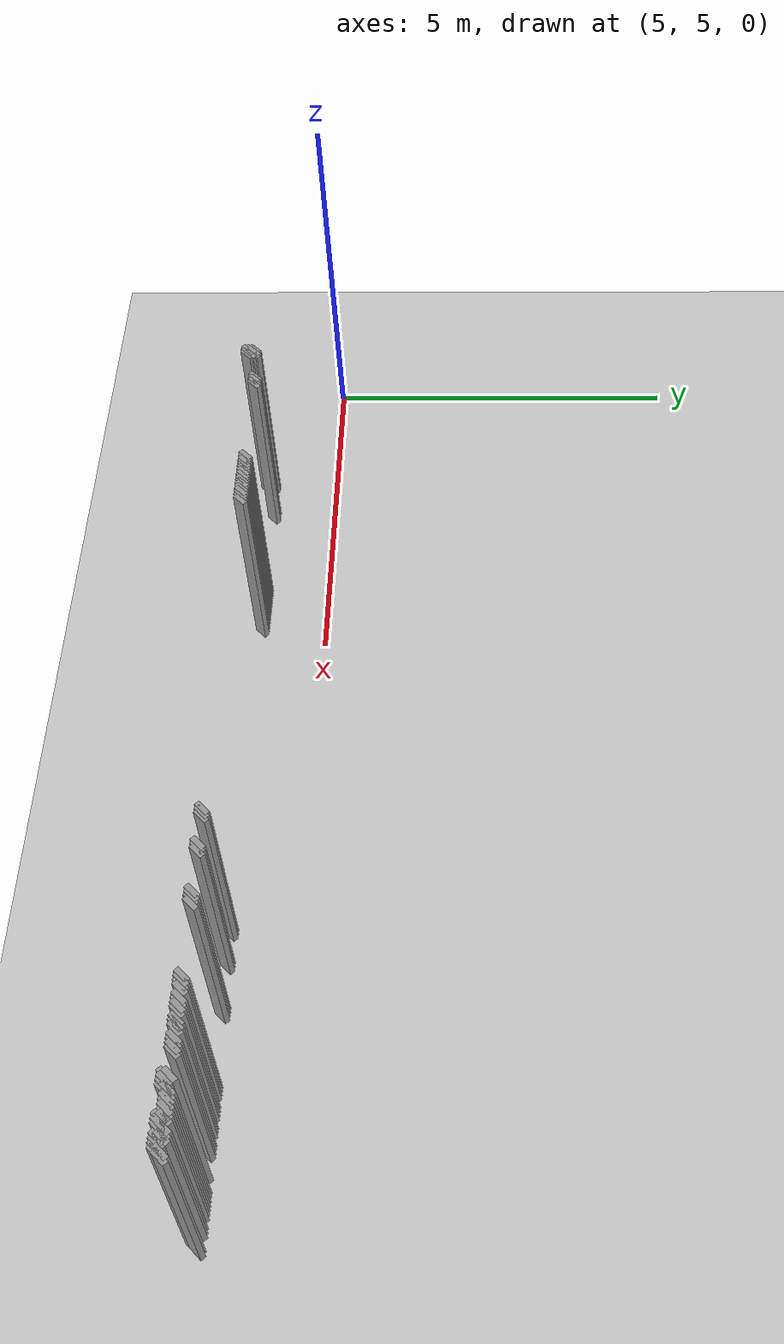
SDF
<sdf version="1.5">
 <world name="default">
  <include><uri>model://ground_plane</uri></include>
  <include><uri>model://sun</uri></include>
  <model name="grey_wall_2489">
   <static>1</static>
   <link name="link">
    <pose>7.45 4.1  1.4 0 0 -0.785398163397</pose>
    <collision name="collision"><geometry><box><size>0.0707106781187 .2  2.8</size></box></geometry></collision>
    <visual name="visual">
     <cast_shadows>0</cast_shadows>
     <geometry><box><size>0.0707106781187 .2  2.8</size></box></geometry>
     <material>
      <script>
       <uri>model://grey_wall/materials/scripts</uri>
       <uri>model://grey_wall/materials/textures</uri>
       <name>vrc/grey_wall</name>
      </script>
     </material>
    </visual>
   </link>
  </model>
  <model name="grey_wall_2490">
   <static>1</static>
   <link name="link">
    <pose>7.5 4.1  1.4 0 0 -0.785398163397</pose>
    <collision name="collision"><geometry><box><size>0.0707106781187 .2  2.8</size></box></geometry></collision>
    <visual name="visual">
     <cast_shadows>0</cast_shadows>
     <geometry><box><size>0.0707106781187 .2  2.8</size></box></geometry>
     <material>
      <script>
       <uri>model://grey_wall/materials/scripts</uri>
       <uri>model://grey_wall/materials/textures</uri>
       <name>vrc/grey_wall</name>
      </script>
     </material>
    </visual>
   </link>
  </model>
  <model name="grey_wall_2491">
   <static>1</static>
   <link name="link">
    <pose>7.55 4.1  1.4 0 0 -0.785398163397</pose>
    <collision name="collision"><geometry><box><size>0.0707106781187 .2  2.8</size></box></geometry></collision>
    <visual name="visual">
     <cast_shadows>0</cast_shadows>
     <geometry><box><size>0.0707106781187 .2  2.8</size></box></geometry>
     <material>
      <script>
       <uri>model://grey_wall/materials/scripts</uri>
       <uri>model://grey_wall/materials/textures</uri>
       <name>vrc/grey_wall</name>
      </script>
     </material>
    </visual>
   </link>
  </model>
  <model name="grey_wall_2492">
   <static>1</static>
   <link name="link">
    <pose>7.6 4.1  1.4 0 0 -0.785398163397</pose>
    <collision name="collision"><geometry><box><size>0.0707106781187 .2  2.8</size></box></geometry></collision>
    <visual name="visual">
     <cast_shadows>0</cast_shadows>
     <geometry><box><size>0.0707106781187 .2  2.8</size></box></geometry>
     <material>
      <script>
       <uri>model://grey_wall/materials/scripts</uri>
       <uri>model://grey_wall/materials/textures</uri>
       <name>vrc/grey_wall</name>
      </script>
     </material>
    </visual>
   </link>
  </model>
  <model name="grey_wall_2493">
   <static>1</static>
   <link name="link">
    <pose>8.95 4.1  1.4 0 0 -0.785398163397</pose>
    <collision name="collision"><geometry><box><size>0.0707106781187 .2  2.8</size></box></geometry></collision>
    <visual name="visual">
     <cast_shadows>0</cast_shadows>
     <geometry><box><size>0.0707106781187 .2  2.8</size></box></geometry>
     <material>
      <script>
       <uri>model://grey_wall/materials/scripts</uri>
       <uri>model://grey_wall/materials/textures</uri>
       <name>vrc/grey_wall</name>
      </script>
     </material>
    </visual>
   </link>
  </model>
  <model name="grey_wall_2494">
   <static>1</static>
   <link name="link">
    <pose>9.0 4.1  1.4 0 0 -0.785398163397</pose>
    <collision name="collision"><geometry><box><size>0.0707106781187 .2  2.8</size></box></geometry></collision>
    <visual name="visual">
     <cast_shadows>0</cast_shadows>
     <geometry><box><size>0.0707106781187 .2  2.8</size></box></geometry>
     <material>
      <script>
       <uri>model://grey_wall/materials/scripts</uri>
       <uri>model://grey_wall/materials/textures</uri>
       <name>vrc/grey_wall</name>
      </script>
     </material>
    </visual>
   </link>
  </model>
  <model name="grey_wall_2495">
   <static>1</static>
   <link name="link">
    <pose>9.05 4.1  1.4 0 0 -0.785398163397</pose>
    <collision name="collision"><geometry><box><size>0.0707106781187 .2  2.8</size></box></geometry></collision>
    <visual name="visual">
     <cast_shadows>0</cast_shadows>
     <geometry><box><size>0.0707106781187 .2  2.8</size></box></geometry>
     <material>
      <script>
       <uri>model://grey_wall/materials/scripts</uri>
       <uri>model://grey_wall/materials/textures</uri>
       <name>vrc/grey_wall</name>
      </script>
     </material>
    </visual>
   </link>
  </model>
  <model name="grey_wall_2496">
   <static>1</static>
   <link name="link">
    <pose>9.1 4.1  1.4 0 0 -0.785398163397</pose>
    <collision name="collision"><geometry><box><size>0.0707106781187 .2  2.8</size></box></geometry></collision>
    <visual name="visual">
     <cast_shadows>0</cast_shadows>
     <geometry><box><size>0.0707106781187 .2  2.8</size></box></geometry>
     <material>
      <script>
       <uri>model://grey_wall/materials/scripts</uri>
       <uri>model://grey_wall/materials/textures</uri>
       <name>vrc/grey_wall</name>
      </script>
     </material>
    </visual>
   </link>
  </model>
  <model name="grey_wall_2497">
   <static>1</static>
   <link name="link">
    <pose>9.15 4.1  1.4 0 0 -0.785398163397</pose>
    <collision name="collision"><geometry><box><size>0.0707106781187 .2  2.8</size></box></geometry></collision>
    <visual name="visual">
     <cast_shadows>0</cast_shadows>
     <geometry><box><size>0.0707106781187 .2  2.8</size></box></geometry>
     <material>
      <script>
       <uri>model://grey_wall/materials/scripts</uri>
       <uri>model://grey_wall/materials/textures</uri>
       <name>vrc/grey_wall</name>
      </script>
     </material>
    </visual>
   </link>
  </model>
  <model name="grey_wall_2498">
   <static>1</static>
   <link name="link">
    <pose>9.2 4.1  1.4 0 0 -0.785398163397</pose>
    <collision name="collision"><geometry><box><size>0.0707106781187 .2  2.8</size></box></geometry></collision>
    <visual name="visual">
     <cast_shadows>0</cast_shadows>
     <geometry><box><size>0.0707106781187 .2  2.8</size></box></geometry>
     <material>
      <script>
       <uri>model://grey_wall/materials/scripts</uri>
       <uri>model://grey_wall/materials/textures</uri>
       <name>vrc/grey_wall</name>
      </script>
     </material>
    </visual>
   </link>
  </model>
  <model name="grey_wall_2499">
   <static>1</static>
   <link name="link">
    <pose>9.25 4.1  1.4 0 0 -0.785398163397</pose>
    <collision name="collision"><geometry><box><size>0.0707106781187 .2  2.8</size></box></geometry></collision>
    <visual name="visual">
     <cast_shadows>0</cast_shadows>
     <geometry><box><size>0.0707106781187 .2  2.8</size></box></geometry>
     <material>
      <script>
       <uri>model://grey_wall/materials/scripts</uri>
       <uri>model://grey_wall/materials/textures</uri>
       <name>vrc/grey_wall</name>
      </script>
     </material>
    </visual>
   </link>
  </model>
  <model name="grey_wall_2500">
   <static>1</static>
   <link name="link">
    <pose>9.3 4.1  1.4 0 0 -0.785398163397</pose>
    <collision name="collision"><geometry><box><size>0.0707106781187 .2  2.8</size></box></geometry></collision>
    <visual name="visual">
     <cast_shadows>0</cast_shadows>
     <geometry><box><size>0.0707106781187 .2  2.8</size></box></geometry>
     <material>
      <script>
       <uri>model://grey_wall/materials/scripts</uri>
       <uri>model://grey_wall/materials/textures</uri>
       <name>vrc/grey_wall</name>
      </script>
     </material>
    </visual>
   </link>
  </model>
  <model name="grey_wall_2501">
   <static>1</static>
   <link name="link">
    <pose>9.35 4.1  1.4 0 0 -0.785398163397</pose>
    <collision name="collision"><geometry><box><size>0.0707106781187 .2  2.8</size></box></geometry></collision>
    <visual name="visual">
     <cast_shadows>0</cast_shadows>
     <geometry><box><size>0.0707106781187 .2  2.8</size></box></geometry>
     <material>
      <script>
       <uri>model://grey_wall/materials/scripts</uri>
       <uri>model://grey_wall/materials/textures</uri>
       <name>vrc/grey_wall</name>
      </script>
     </material>
    </visual>
   </link>
  </model>
  <model name="grey_wall_2502">
   <static>1</static>
   <link name="link">
    <pose>9.4 4.1  1.4 0 0 -0.785398163397</pose>
    <collision name="collision"><geometry><box><size>0.0707106781187 .2  2.8</size></box></geometry></collision>
    <visual name="visual">
     <cast_shadows>0</cast_shadows>
     <geometry><box><size>0.0707106781187 .2  2.8</size></box></geometry>
     <material>
      <script>
       <uri>model://grey_wall/materials/scripts</uri>
       <uri>model://grey_wall/materials/textures</uri>
       <name>vrc/grey_wall</name>
      </script>
     </material>
    </visual>
   </link>
  </model>
  <model name="grey_wall_2503">
   <static>1</static>
   <link name="link">
    <pose>9.45 4.1  1.4 0 0 -0.785398163397</pose>
    <collision name="collision"><geometry><box><size>0.0707106781187 .2  2.8</size></box></geometry></collision>
    <visual name="visual">
     <cast_shadows>0</cast_shadows>
     <geometry><box><size>0.0707106781187 .2  2.8</size></box></geometry>
     <material>
      <script>
       <uri>model://grey_wall/materials/scripts</uri>
       <uri>model://grey_wall/materials/textures</uri>
       <name>vrc/grey_wall</name>
      </script>
     </material>
    </visual>
   </link>
  </model>
  <model name="grey_wall_2504">
   <static>1</static>
   <link name="link">
    <pose>9.5 4.1  1.4 0 0 -0.785398163397</pose>
    <collision name="collision"><geometry><box><size>0.0707106781187 .2  2.8</size></box></geometry></collision>
    <visual name="visual">
     <cast_shadows>0</cast_shadows>
     <geometry><box><size>0.0707106781187 .2  2.8</size></box></geometry>
     <material>
      <script>
       <uri>model://grey_wall/materials/scripts</uri>
       <uri>model://grey_wall/materials/textures</uri>
       <name>vrc/grey_wall</name>
      </script>
     </material>
    </visual>
   </link>
  </model>
  <model name="grey_wall_2505">
   <static>1</static>
   <link name="link">
    <pose>9.55 4.1  1.4 0 0 -0.785398163397</pose>
    <collision name="collision"><geometry><box><size>0.0707106781187 .2  2.8</size></box></geometry></collision>
    <visual name="visual">
     <cast_shadows>0</cast_shadows>
     <geometry><box><size>0.0707106781187 .2  2.8</size></box></geometry>
     <material>
      <script>
       <uri>model://grey_wall/materials/scripts</uri>
       <uri>model://grey_wall/materials/textures</uri>
       <name>vrc/grey_wall</name>
      </script>
     </material>
    </visual>
   </link>
  </model>
  <model name="grey_wall_2506">
   <static>1</static>
   <link name="link">
    <pose>9.6 4.1  1.4 0 0 -0.785398163397</pose>
    <collision name="collision"><geometry><box><size>0.0707106781187 .2  2.8</size></box></geometry></collision>
    <visual name="visual">
     <cast_shadows>0</cast_shadows>
     <geometry><box><size>0.0707106781187 .2  2.8</size></box></geometry>
     <material>
      <script>
       <uri>model://grey_wall/materials/scripts</uri>
       <uri>model://grey_wall/materials/textures</uri>
       <name>vrc/grey_wall</name>
      </script>
     </material>
    </visual>
   </link>
  </model>
  <model name="grey_wall_2507">
   <static>1</static>
   <link name="link">
    <pose>9.65 4.1  1.4 0 0 -0.785398163397</pose>
    <collision name="collision"><geometry><box><size>0.0707106781187 .2  2.8</size></box></geometry></collision>
    <visual name="visual">
     <cast_shadows>0</cast_shadows>
     <geometry><box><size>0.0707106781187 .2  2.8</size></box></geometry>
     <material>
      <script>
       <uri>model://grey_wall/materials/scripts</uri>
       <uri>model://grey_wall/materials/textures</uri>
       <name>vrc/grey_wall</name>
      </script>
     </material>
    </visual>
   </link>
  </model>
  <model name="grey_wall_2508">
   <static>1</static>
   <link name="link">
    <pose>9.7 4.1  1.4 0 0 -0.785398163397</pose>
    <collision name="collision"><geometry><box><size>0.0707106781187 .2  2.8</size></box></geometry></collision>
    <visual name="visual">
     <cast_shadows>0</cast_shadows>
     <geometry><box><size>0.0707106781187 .2  2.8</size></box></geometry>
     <material>
      <script>
       <uri>model://grey_wall/materials/scripts</uri>
       <uri>model://grey_wall/materials/textures</uri>
       <name>vrc/grey_wall</name>
      </script>
     </material>
    </visual>
   </link>
  </model>
  <model name="grey_wall_2509">
   <static>1</static>
   <link name="link">
    <pose>9.75 4.1  1.4 0 0 -0.785398163397</pose>
    <collision name="collision"><geometry><box><size>0.0707106781187 .2  2.8</size></box></geometry></collision>
    <visual name="visual">
     <cast_shadows>0</cast_shadows>
     <geometry><box><size>0.0707106781187 .2  2.8</size></box></geometry>
     <material>
      <script>
       <uri>model://grey_wall/materials/scripts</uri>
       <uri>model://grey_wall/materials/textures</uri>
       <name>vrc/grey_wall</name>
      </script>
     </material>
    </visual>
   </link>
  </model>
  <model name="grey_wall_2510">
   <static>1</static>
   <link name="link">
    <pose>14.45 4.1  1.4 0 0 -0.785398163397</pose>
    <collision name="collision"><geometry><box><size>0.0707106781187 .2  2.8</size></box></geometry></collision>
    <visual name="visual">
     <cast_shadows>0</cast_shadows>
     <geometry><box><size>0.0707106781187 .2  2.8</size></box></geometry>
     <material>
      <script>
       <uri>model://grey_wall/materials/scripts</uri>
       <uri>model://grey_wall/materials/textures</uri>
       <name>vrc/grey_wall</name>
      </script>
     </material>
    </visual>
   </link>
  </model>
  <model name="grey_wall_2511">
   <static>1</static>
   <link name="link">
    <pose>14.5 4.1  1.4 0 0 -0.785398163397</pose>
    <collision name="collision"><geometry><box><size>0.0707106781187 .2  2.8</size></box></geometry></collision>
    <visual name="visual">
     <cast_shadows>0</cast_shadows>
     <geometry><box><size>0.0707106781187 .2  2.8</size></box></geometry>
     <material>
      <script>
       <uri>model://grey_wall/materials/scripts</uri>
       <uri>model://grey_wall/materials/textures</uri>
       <name>vrc/grey_wall</name>
      </script>
     </material>
    </visual>
   </link>
  </model>
  <model name="grey_wall_2512">
   <static>1</static>
   <link name="link">
    <pose>14.55 4.1  1.4 0 0 -0.785398163397</pose>
    <collision name="collision"><geometry><box><size>0.0707106781187 .2  2.8</size></box></geometry></collision>
    <visual name="visual">
     <cast_shadows>0</cast_shadows>
     <geometry><box><size>0.0707106781187 .2  2.8</size></box></geometry>
     <material>
      <script>
       <uri>model://grey_wall/materials/scripts</uri>
       <uri>model://grey_wall/materials/textures</uri>
       <name>vrc/grey_wall</name>
      </script>
     </material>
    </visual>
   </link>
  </model>
  <model name="grey_wall_2513">
   <static>1</static>
   <link name="link">
    <pose>14.9 4.1  1.4 0 0 -0.785398163397</pose>
    <collision name="collision"><geometry><box><size>0.0707106781187 .2  2.8</size></box></geometry></collision>
    <visual name="visual">
     <cast_shadows>0</cast_shadows>
     <geometry><box><size>0.0707106781187 .2  2.8</size></box></geometry>
     <material>
      <script>
       <uri>model://grey_wall/materials/scripts</uri>
       <uri>model://grey_wall/materials/textures</uri>
       <name>vrc/grey_wall</name>
      </script>
     </material>
    </visual>
   </link>
  </model>
  <model name="grey_wall_2514">
   <static>1</static>
   <link name="link">
    <pose>14.95 4.1  1.4 0 0 -0.785398163397</pose>
    <collision name="collision"><geometry><box><size>0.0707106781187 .2  2.8</size></box></geometry></collision>
    <visual name="visual">
     <cast_shadows>0</cast_shadows>
     <geometry><box><size>0.0707106781187 .2  2.8</size></box></geometry>
     <material>
      <script>
       <uri>model://grey_wall/materials/scripts</uri>
       <uri>model://grey_wall/materials/textures</uri>
       <name>vrc/grey_wall</name>
      </script>
     </material>
    </visual>
   </link>
  </model>
  <model name="grey_wall_2515">
   <static>1</static>
   <link name="link">
    <pose>15.0 4.1  1.4 0 0 -0.785398163397</pose>
    <collision name="collision"><geometry><box><size>0.0707106781187 .2  2.8</size></box></geometry></collision>
    <visual name="visual">
     <cast_shadows>0</cast_shadows>
     <geometry><box><size>0.0707106781187 .2  2.8</size></box></geometry>
     <material>
      <script>
       <uri>model://grey_wall/materials/scripts</uri>
       <uri>model://grey_wall/materials/textures</uri>
       <name>vrc/grey_wall</name>
      </script>
     </material>
    </visual>
   </link>
  </model>
  <model name="grey_wall_2516">
   <static>1</static>
   <link name="link">
    <pose>15.5 4.1  1.4 0 0 -0.785398163397</pose>
    <collision name="collision"><geometry><box><size>0.0707106781187 .2  2.8</size></box></geometry></collision>
    <visual name="visual">
     <cast_shadows>0</cast_shadows>
     <geometry><box><size>0.0707106781187 .2  2.8</size></box></geometry>
     <material>
      <script>
       <uri>model://grey_wall/materials/scripts</uri>
       <uri>model://grey_wall/materials/textures</uri>
       <name>vrc/grey_wall</name>
      </script>
     </material>
    </visual>
   </link>
  </model>
  <model name="grey_wall_2517">
   <static>1</static>
   <link name="link">
    <pose>15.55 4.1  1.4 0 0 -0.785398163397</pose>
    <collision name="collision"><geometry><box><size>0.0707106781187 .2  2.8</size></box></geometry></collision>
    <visual name="visual">
     <cast_shadows>0</cast_shadows>
     <geometry><box><size>0.0707106781187 .2  2.8</size></box></geometry>
     <material>
      <script>
       <uri>model://grey_wall/materials/scripts</uri>
       <uri>model://grey_wall/materials/textures</uri>
       <name>vrc/grey_wall</name>
      </script>
     </material>
    </visual>
   </link>
  </model>
  <model name="grey_wall_2518">
   <static>1</static>
   <link name="link">
    <pose>15.6 4.1  1.4 0 0 -0.785398163397</pose>
    <collision name="collision"><geometry><box><size>0.0707106781187 .2  2.8</size></box></geometry></collision>
    <visual name="visual">
     <cast_shadows>0</cast_shadows>
     <geometry><box><size>0.0707106781187 .2  2.8</size></box></geometry>
     <material>
      <script>
       <uri>model://grey_wall/materials/scripts</uri>
       <uri>model://grey_wall/materials/textures</uri>
       <name>vrc/grey_wall</name>
      </script>
     </material>
    </visual>
   </link>
  </model>
  <model name="grey_wall_2519">
   <static>1</static>
   <link name="link">
    <pose>15.65 4.1  1.4 0 0 -0.785398163397</pose>
    <collision name="collision"><geometry><box><size>0.0707106781187 .2  2.8</size></box></geometry></collision>
    <visual name="visual">
     <cast_shadows>0</cast_shadows>
     <geometry><box><size>0.0707106781187 .2  2.8</size></box></geometry>
     <material>
      <script>
       <uri>model://grey_wall/materials/scripts</uri>
       <uri>model://grey_wall/materials/textures</uri>
       <name>vrc/grey_wall</name>
      </script>
     </material>
    </visual>
   </link>
  </model>
  <model name="grey_wall_2520">
   <static>1</static>
   <link name="link">
    <pose>16.5 4.1  1.4 0 0 -0.785398163397</pose>
    <collision name="collision"><geometry><box><size>0.0707106781187 .2  2.8</size></box></geometry></collision>
    <visual name="visual">
     <cast_shadows>0</cast_shadows>
     <geometry><box><size>0.0707106781187 .2  2.8</size></box></geometry>
     <material>
      <script>
       <uri>model://grey_wall/materials/scripts</uri>
       <uri>model://grey_wall/materials/textures</uri>
       <name>vrc/grey_wall</name>
      </script>
     </material>
    </visual>
   </link>
  </model>
  <model name="grey_wall_2521">
   <static>1</static>
   <link name="link">
    <pose>16.55 4.1  1.4 0 0 -0.785398163397</pose>
    <collision name="collision"><geometry><box><size>0.0707106781187 .2  2.8</size></box></geometry></collision>
    <visual name="visual">
     <cast_shadows>0</cast_shadows>
     <geometry><box><size>0.0707106781187 .2  2.8</size></box></geometry>
     <material>
      <script>
       <uri>model://grey_wall/materials/scripts</uri>
       <uri>model://grey_wall/materials/textures</uri>
       <name>vrc/grey_wall</name>
      </script>
     </material>
    </visual>
   </link>
  </model>
  <model name="grey_wall_2522">
   <static>1</static>
   <link name="link">
    <pose>16.6 4.1  1.4 0 0 -0.785398163397</pose>
    <collision name="collision"><geometry><box><size>0.0707106781187 .2  2.8</size></box></geometry></collision>
    <visual name="visual">
     <cast_shadows>0</cast_shadows>
     <geometry><box><size>0.0707106781187 .2  2.8</size></box></geometry>
     <material>
      <script>
       <uri>model://grey_wall/materials/scripts</uri>
       <uri>model://grey_wall/materials/textures</uri>
       <name>vrc/grey_wall</name>
      </script>
     </material>
    </visual>
   </link>
  </model>
  <model name="grey_wall_2523">
   <static>1</static>
   <link name="link">
    <pose>16.65 4.1  1.4 0 0 -0.785398163397</pose>
    <collision name="collision"><geometry><box><size>0.0707106781187 .2  2.8</size></box></geometry></collision>
    <visual name="visual">
     <cast_shadows>0</cast_shadows>
     <geometry><box><size>0.0707106781187 .2  2.8</size></box></geometry>
     <material>
      <script>
       <uri>model://grey_wall/materials/scripts</uri>
       <uri>model://grey_wall/materials/textures</uri>
       <name>vrc/grey_wall</name>
      </script>
     </material>
    </visual>
   </link>
  </model>
  <model name="grey_wall_2524">
   <static>1</static>
   <link name="link">
    <pose>16.75 4.1  1.4 0 0 -0.785398163397</pose>
    <collision name="collision"><geometry><box><size>0.0707106781187 .2  2.8</size></box></geometry></collision>
    <visual name="visual">
     <cast_shadows>0</cast_shadows>
     <geometry><box><size>0.0707106781187 .2  2.8</size></box></geometry>
     <material>
      <script>
       <uri>model://grey_wall/materials/scripts</uri>
       <uri>model://grey_wall/materials/textures</uri>
       <name>vrc/grey_wall</name>
      </script>
     </material>
    </visual>
   </link>
  </model>
  <model name="grey_wall_2525">
   <static>1</static>
   <link name="link">
    <pose>16.8 4.1  1.4 0 0 -0.785398163397</pose>
    <collision name="collision"><geometry><box><size>0.0707106781187 .2  2.8</size></box></geometry></collision>
    <visual name="visual">
     <cast_shadows>0</cast_shadows>
     <geometry><box><size>0.0707106781187 .2  2.8</size></box></geometry>
     <material>
      <script>
       <uri>model://grey_wall/materials/scripts</uri>
       <uri>model://grey_wall/materials/textures</uri>
       <name>vrc/grey_wall</name>
      </script>
     </material>
    </visual>
   </link>
  </model>
  <model name="grey_wall_2526">
   <static>1</static>
   <link name="link">
    <pose>16.85 4.1  1.4 0 0 -0.785398163397</pose>
    <collision name="collision"><geometry><box><size>0.0707106781187 .2  2.8</size></box></geometry></collision>
    <visual name="visual">
     <cast_shadows>0</cast_shadows>
     <geometry><box><size>0.0707106781187 .2  2.8</size></box></geometry>
     <material>
      <script>
       <uri>model://grey_wall/materials/scripts</uri>
       <uri>model://grey_wall/materials/textures</uri>
       <name>vrc/grey_wall</name>
      </script>
     </material>
    </visual>
   </link>
  </model>
  <model name="grey_wall_2527">
   <static>1</static>
   <link name="link">
    <pose>16.9 4.1  1.4 0 0 -0.785398163397</pose>
    <collision name="collision"><geometry><box><size>0.0707106781187 .2  2.8</size></box></geometry></collision>
    <visual name="visual">
     <cast_shadows>0</cast_shadows>
     <geometry><box><size>0.0707106781187 .2  2.8</size></box></geometry>
     <material>
      <script>
       <uri>model://grey_wall/materials/scripts</uri>
       <uri>model://grey_wall/materials/textures</uri>
       <name>vrc/grey_wall</name>
      </script>
     </material>
    </visual>
   </link>
  </model>
  <model name="grey_wall_2528">
   <static>1</static>
   <link name="link">
    <pose>17.0 4.1  1.4 0 0 -0.785398163397</pose>
    <collision name="collision"><geometry><box><size>0.0707106781187 .2  2.8</size></box></geometry></collision>
    <visual name="visual">
     <cast_shadows>0</cast_shadows>
     <geometry><box><size>0.0707106781187 .2  2.8</size></box></geometry>
     <material>
      <script>
       <uri>model://grey_wall/materials/scripts</uri>
       <uri>model://grey_wall/materials/textures</uri>
       <name>vrc/grey_wall</name>
      </script>
     </material>
    </visual>
   </link>
  </model>
  <model name="grey_wall_2529">
   <static>1</static>
   <link name="link">
    <pose>17.05 4.1  1.4 0 0 -0.785398163397</pose>
    <collision name="collision"><geometry><box><size>0.0707106781187 .2  2.8</size></box></geometry></collision>
    <visual name="visual">
     <cast_shadows>0</cast_shadows>
     <geometry><box><size>0.0707106781187 .2  2.8</size></box></geometry>
     <material>
      <script>
       <uri>model://grey_wall/materials/scripts</uri>
       <uri>model://grey_wall/materials/textures</uri>
       <name>vrc/grey_wall</name>
      </script>
     </material>
    </visual>
   </link>
  </model>
  <model name="grey_wall_2530">
   <static>1</static>
   <link name="link">
    <pose>17.1 4.1  1.4 0 0 -0.785398163397</pose>
    <collision name="collision"><geometry><box><size>0.0707106781187 .2  2.8</size></box></geometry></collision>
    <visual name="visual">
     <cast_shadows>0</cast_shadows>
     <geometry><box><size>0.0707106781187 .2  2.8</size></box></geometry>
     <material>
      <script>
       <uri>model://grey_wall/materials/scripts</uri>
       <uri>model://grey_wall/materials/textures</uri>
       <name>vrc/grey_wall</name>
      </script>
     </material>
    </visual>
   </link>
  </model>
  <model name="grey_wall_2531">
   <static>1</static>
   <link name="link">
    <pose>17.2 4.1  1.4 0 0 -0.785398163397</pose>
    <collision name="collision"><geometry><box><size>0.0707106781187 .2  2.8</size></box></geometry></collision>
    <visual name="visual">
     <cast_shadows>0</cast_shadows>
     <geometry><box><size>0.0707106781187 .2  2.8</size></box></geometry>
     <material>
      <script>
       <uri>model://grey_wall/materials/scripts</uri>
       <uri>model://grey_wall/materials/textures</uri>
       <name>vrc/grey_wall</name>
      </script>
     </material>
    </visual>
   </link>
  </model>
  <model name="grey_wall_2532">
   <static>1</static>
   <link name="link">
    <pose>17.25 4.1  1.4 0 0 -0.785398163397</pose>
    <collision name="collision"><geometry><box><size>0.0707106781187 .2  2.8</size></box></geometry></collision>
    <visual name="visual">
     <cast_shadows>0</cast_shadows>
     <geometry><box><size>0.0707106781187 .2  2.8</size></box></geometry>
     <material>
      <script>
       <uri>model://grey_wall/materials/scripts</uri>
       <uri>model://grey_wall/materials/textures</uri>
       <name>vrc/grey_wall</name>
      </script>
     </material>
    </visual>
   </link>
  </model>
  <model name="grey_wall_2533">
   <static>1</static>
   <link name="link">
    <pose>17.3 4.1  1.4 0 0 -0.785398163397</pose>
    <collision name="collision"><geometry><box><size>0.0707106781187 .2  2.8</size></box></geometry></collision>
    <visual name="visual">
     <cast_shadows>0</cast_shadows>
     <geometry><box><size>0.0707106781187 .2  2.8</size></box></geometry>
     <material>
      <script>
       <uri>model://grey_wall/materials/scripts</uri>
       <uri>model://grey_wall/materials/textures</uri>
       <name>vrc/grey_wall</name>
      </script>
     </material>
    </visual>
   </link>
  </model>
  <model name="grey_wall_2534">
   <static>1</static>
   <link name="link">
    <pose>17.35 4.1  1.4 0 0 -0.785398163397</pose>
    <collision name="collision"><geometry><box><size>0.0707106781187 .2  2.8</size></box></geometry></collision>
    <visual name="visual">
     <cast_shadows>0</cast_shadows>
     <geometry><box><size>0.0707106781187 .2  2.8</size></box></geometry>
     <material>
      <script>
       <uri>model://grey_wall/materials/scripts</uri>
       <uri>model://grey_wall/materials/textures</uri>
       <name>vrc/grey_wall</name>
      </script>
     </material>
    </visual>
   </link>
  </model>
  <model name="grey_wall_2535">
   <static>1</static>
   <link name="link">
    <pose>17.6 4.1  1.4 0 0 -0.785398163397</pose>
    <collision name="collision"><geometry><box><size>0.0707106781187 .2  2.8</size></box></geometry></collision>
    <visual name="visual">
     <cast_shadows>0</cast_shadows>
     <geometry><box><size>0.0707106781187 .2  2.8</size></box></geometry>
     <material>
      <script>
       <uri>model://grey_wall/materials/scripts</uri>
       <uri>model://grey_wall/materials/textures</uri>
       <name>vrc/grey_wall</name>
      </script>
     </material>
    </visual>
   </link>
  </model>
  <model name="grey_wall_2536">
   <static>1</static>
   <link name="link">
    <pose>17.75 4.1  1.4 0 0 -0.785398163397</pose>
    <collision name="collision"><geometry><box><size>0.0707106781187 .2  2.8</size></box></geometry></collision>
    <visual name="visual">
     <cast_shadows>0</cast_shadows>
     <geometry><box><size>0.0707106781187 .2  2.8</size></box></geometry>
     <material>
      <script>
       <uri>model://grey_wall/materials/scripts</uri>
       <uri>model://grey_wall/materials/textures</uri>
       <name>vrc/grey_wall</name>
      </script>
     </material>
    </visual>
   </link>
  </model>
  <model name="grey_wall_2537">
   <static>1</static>
   <link name="link">
    <pose>17.8 4.1  1.4 0 0 -0.785398163397</pose>
    <collision name="collision"><geometry><box><size>0.0707106781187 .2  2.8</size></box></geometry></collision>
    <visual name="visual">
     <cast_shadows>0</cast_shadows>
     <geometry><box><size>0.0707106781187 .2  2.8</size></box></geometry>
     <material>
      <script>
       <uri>model://grey_wall/materials/scripts</uri>
       <uri>model://grey_wall/materials/textures</uri>
       <name>vrc/grey_wall</name>
      </script>
     </material>
    </visual>
   </link>
  </model>
  <model name="grey_wall_2538">
   <static>1</static>
   <link name="link">
    <pose>17.85 4.1  1.4 0 0 -0.785398163397</pose>
    <collision name="collision"><geometry><box><size>0.0707106781187 .2  2.8</size></box></geometry></collision>
    <visual name="visual">
     <cast_shadows>0</cast_shadows>
     <geometry><box><size>0.0707106781187 .2  2.8</size></box></geometry>
     <material>
      <script>
       <uri>model://grey_wall/materials/scripts</uri>
       <uri>model://grey_wall/materials/textures</uri>
       <name>vrc/grey_wall</name>
      </script>
     </material>
    </visual>
   </link>
  </model>
  <model name="grey_wall_2539">
   <static>1</static>
   <link name="link">
    <pose>17.9 4.1  1.4 0 0 -0.785398163397</pose>
    <collision name="collision"><geometry><box><size>0.0707106781187 .2  2.8</size></box></geometry></collision>
    <visual name="visual">
     <cast_shadows>0</cast_shadows>
     <geometry><box><size>0.0707106781187 .2  2.8</size></box></geometry>
     <material>
      <script>
       <uri>model://grey_wall/materials/scripts</uri>
       <uri>model://grey_wall/materials/textures</uri>
       <name>vrc/grey_wall</name>
      </script>
     </material>
    </visual>
   </link>
  </model>
  <model name="grey_wall_2540">
   <static>1</static>
   <link name="link">
    <pose>17.95 4.1  1.4 0 0 -0.785398163397</pose>
    <collision name="collision"><geometry><box><size>0.0707106781187 .2  2.8</size></box></geometry></collision>
    <visual name="visual">
     <cast_shadows>0</cast_shadows>
     <geometry><box><size>0.0707106781187 .2  2.8</size></box></geometry>
     <material>
      <script>
       <uri>model://grey_wall/materials/scripts</uri>
       <uri>model://grey_wall/materials/textures</uri>
       <name>vrc/grey_wall</name>
      </script>
     </material>
    </visual>
   </link>
  </model>
  <model name="grey_wall_2541">
   <static>1</static>
   <link name="link">
    <pose>18.0 4.1  1.4 0 0 -0.785398163397</pose>
    <collision name="collision"><geometry><box><size>0.0707106781187 .2  2.8</size></box></geometry></collision>
    <visual name="visual">
     <cast_shadows>0</cast_shadows>
     <geometry><box><size>0.0707106781187 .2  2.8</size></box></geometry>
     <material>
      <script>
       <uri>model://grey_wall/materials/scripts</uri>
       <uri>model://grey_wall/materials/textures</uri>
       <name>vrc/grey_wall</name>
      </script>
     </material>
    </visual>
   </link>
  </model>
  <model name="grey_wall_2542">
   <static>1</static>
   <link name="link">
    <pose>18.05 4.1  1.4 0 0 -0.785398163397</pose>
    <collision name="collision"><geometry><box><size>0.0707106781187 .2  2.8</size></box></geometry></collision>
    <visual name="visual">
     <cast_shadows>0</cast_shadows>
     <geometry><box><size>0.0707106781187 .2  2.8</size></box></geometry>
     <material>
      <script>
       <uri>model://grey_wall/materials/scripts</uri>
       <uri>model://grey_wall/materials/textures</uri>
       <name>vrc/grey_wall</name>
      </script>
     </material>
    </visual>
   </link>
  </model>
  <model name="grey_wall_2543">
   <static>1</static>
   <link name="link">
    <pose>18.15 4.1  1.4 0 0 -0.785398163397</pose>
    <collision name="collision"><geometry><box><size>0.0707106781187 .2  2.8</size></box></geometry></collision>
    <visual name="visual">
     <cast_shadows>0</cast_shadows>
     <geometry><box><size>0.0707106781187 .2  2.8</size></box></geometry>
     <material>
      <script>
       <uri>model://grey_wall/materials/scripts</uri>
       <uri>model://grey_wall/materials/textures</uri>
       <name>vrc/grey_wall</name>
      </script>
     </material>
    </visual>
   </link>
  </model>
  <model name="grey_wall_2544">
   <static>1</static>
   <link name="link">
    <pose>18.2 4.1  1.4 0 0 -0.785398163397</pose>
    <collision name="collision"><geometry><box><size>0.0707106781187 .2  2.8</size></box></geometry></collision>
    <visual name="visual">
     <cast_shadows>0</cast_shadows>
     <geometry><box><size>0.0707106781187 .2  2.8</size></box></geometry>
     <material>
      <script>
       <uri>model://grey_wall/materials/scripts</uri>
       <uri>model://grey_wall/materials/textures</uri>
       <name>vrc/grey_wall</name>
      </script>
     </material>
    </visual>
   </link>
  </model>
  <model name="grey_wall_2545">
   <static>1</static>
   <link name="link">
    <pose>18.25 4.1  1.4 0 0 -0.785398163397</pose>
    <collision name="collision"><geometry><box><size>0.0707106781187 .2  2.8</size></box></geometry></collision>
    <visual name="visual">
     <cast_shadows>0</cast_shadows>
     <geometry><box><size>0.0707106781187 .2  2.8</size></box></geometry>
     <material>
      <script>
       <uri>model://grey_wall/materials/scripts</uri>
       <uri>model://grey_wall/materials/textures</uri>
       <name>vrc/grey_wall</name>
      </script>
     </material>
    </visual>
   </link>
  </model>
  <model name="grey_wall_2546">
   <static>1</static>
   <link name="link">
    <pose>18.4 4.1  1.4 0 0 -0.785398163397</pose>
    <collision name="collision"><geometry><box><size>0.0707106781187 .2  2.8</size></box></geometry></collision>
    <visual name="visual">
     <cast_shadows>0</cast_shadows>
     <geometry><box><size>0.0707106781187 .2  2.8</size></box></geometry>
     <material>
      <script>
       <uri>model://grey_wall/materials/scripts</uri>
       <uri>model://grey_wall/materials/textures</uri>
       <name>vrc/grey_wall</name>
      </script>
     </material>
    </visual>
   </link>
  </model>
  <model name="grey_wall_2547">
   <static>1</static>
   <link name="link">
    <pose>18.45 4.1  1.4 0 0 -0.785398163397</pose>
    <collision name="collision"><geometry><box><size>0.0707106781187 .2  2.8</size></box></geometry></collision>
    <visual name="visual">
     <cast_shadows>0</cast_shadows>
     <geometry><box><size>0.0707106781187 .2  2.8</size></box></geometry>
     <material>
      <script>
       <uri>model://grey_wall/materials/scripts</uri>
       <uri>model://grey_wall/materials/textures</uri>
       <name>vrc/grey_wall</name>
      </script>
     </material>
    </visual>
   </link>
  </model>
  <model name="grey_wall_2548">
   <static>1</static>
   <link name="link">
    <pose>6.9 4.05  1.4 0 0 -0.785398163397</pose>
    <collision name="collision"><geometry><box><size>0.0707106781187 .2  2.8</size></box></geometry></collision>
    <visual name="visual">
     <cast_shadows>0</cast_shadows>
     <geometry><box><size>0.0707106781187 .2  2.8</size></box></geometry>
     <material>
      <script>
       <uri>model://grey_wall/materials/scripts</uri>
       <uri>model://grey_wall/materials/textures</uri>
       <name>vrc/grey_wall</name>
      </script>
     </material>
    </visual>
   </link>
  </model>
  <model name="grey_wall_2549">
   <static>1</static>
   <link name="link">
    <pose>6.95 4.05  1.4 0 0 -0.785398163397</pose>
    <collision name="collision"><geometry><box><size>0.0707106781187 .2  2.8</size></box></geometry></collision>
    <visual name="visual">
     <cast_shadows>0</cast_shadows>
     <geometry><box><size>0.0707106781187 .2  2.8</size></box></geometry>
     <material>
      <script>
       <uri>model://grey_wall/materials/scripts</uri>
       <uri>model://grey_wall/materials/textures</uri>
       <name>vrc/grey_wall</name>
      </script>
     </material>
    </visual>
   </link>
  </model>
  <model name="grey_wall_2550">
   <static>1</static>
   <link name="link">
    <pose>7.0 4.05  1.4 0 0 -0.785398163397</pose>
    <collision name="collision"><geometry><box><size>0.0707106781187 .2  2.8</size></box></geometry></collision>
    <visual name="visual">
     <cast_shadows>0</cast_shadows>
     <geometry><box><size>0.0707106781187 .2  2.8</size></box></geometry>
     <material>
      <script>
       <uri>model://grey_wall/materials/scripts</uri>
       <uri>model://grey_wall/materials/textures</uri>
       <name>vrc/grey_wall</name>
      </script>
     </material>
    </visual>
   </link>
  </model>
  <model name="grey_wall_2551">
   <static>1</static>
   <link name="link">
    <pose>17.6 4.05  1.4 0 0 -0.785398163397</pose>
    <collision name="collision"><geometry><box><size>0.0707106781187 .2  2.8</size></box></geometry></collision>
    <visual name="visual">
     <cast_shadows>0</cast_shadows>
     <geometry><box><size>0.0707106781187 .2  2.8</size></box></geometry>
     <material>
      <script>
       <uri>model://grey_wall/materials/scripts</uri>
       <uri>model://grey_wall/materials/textures</uri>
       <name>vrc/grey_wall</name>
      </script>
     </material>
    </visual>
   </link>
  </model>
  <model name="grey_wall_2552">
   <static>1</static>
   <link name="link">
    <pose>17.65 4.05  1.4 0 0 -0.785398163397</pose>
    <collision name="collision"><geometry><box><size>0.0707106781187 .2  2.8</size></box></geometry></collision>
    <visual name="visual">
     <cast_shadows>0</cast_shadows>
     <geometry><box><size>0.0707106781187 .2  2.8</size></box></geometry>
     <material>
      <script>
       <uri>model://grey_wall/materials/scripts</uri>
       <uri>model://grey_wall/materials/textures</uri>
       <name>vrc/grey_wall</name>
      </script>
     </material>
    </visual>
   </link>
  </model>
  <model name="grey_wall_2553">
   <static>1</static>
   <link name="link">
    <pose>17.7 4.05  1.4 0 0 -0.785398163397</pose>
    <collision name="collision"><geometry><box><size>0.0707106781187 .2  2.8</size></box></geometry></collision>
    <visual name="visual">
     <cast_shadows>0</cast_shadows>
     <geometry><box><size>0.0707106781187 .2  2.8</size></box></geometry>
     <material>
      <script>
       <uri>model://grey_wall/materials/scripts</uri>
       <uri>model://grey_wall/materials/textures</uri>
       <name>vrc/grey_wall</name>
      </script>
     </material>
    </visual>
   </link>
  </model>
  <model name="grey_wall_2554">
   <static>1</static>
   <link name="link">
    <pose>17.75 4.05  1.4 0 0 -0.785398163397</pose>
    <collision name="collision"><geometry><box><size>0.0707106781187 .2  2.8</size></box></geometry></collision>
    <visual name="visual">
     <cast_shadows>0</cast_shadows>
     <geometry><box><size>0.0707106781187 .2  2.8</size></box></geometry>
     <material>
      <script>
       <uri>model://grey_wall/materials/scripts</uri>
       <uri>model://grey_wall/materials/textures</uri>
       <name>vrc/grey_wall</name>
      </script>
     </material>
    </visual>
   </link>
  </model>
  <model name="grey_wall_2555">
   <static>1</static>
   <link name="link">
    <pose>18.05 4.05  1.4 0 0 -0.785398163397</pose>
    <collision name="collision"><geometry><box><size>0.0707106781187 .2  2.8</size></box></geometry></collision>
    <visual name="visual">
     <cast_shadows>0</cast_shadows>
     <geometry><box><size>0.0707106781187 .2  2.8</size></box></geometry>
     <material>
      <script>
       <uri>model://grey_wall/materials/scripts</uri>
       <uri>model://grey_wall/materials/textures</uri>
       <name>vrc/grey_wall</name>
      </script>
     </material>
    </visual>
   </link>
  </model>
  <model name="grey_wall_2556">
   <static>1</static>
   <link name="link">
    <pose>18.1 4.05  1.4 0 0 -0.785398163397</pose>
    <collision name="collision"><geometry><box><size>0.0707106781187 .2  2.8</size></box></geometry></collision>
    <visual name="visual">
     <cast_shadows>0</cast_shadows>
     <geometry><box><size>0.0707106781187 .2  2.8</size></box></geometry>
     <material>
      <script>
       <uri>model://grey_wall/materials/scripts</uri>
       <uri>model://grey_wall/materials/textures</uri>
       <name>vrc/grey_wall</name>
      </script>
     </material>
    </visual>
   </link>
  </model>
  <model name="grey_wall_2557">
   <static>1</static>
   <link name="link">
    <pose>18.15 4.05  1.4 0 0 -0.785398163397</pose>
    <collision name="collision"><geometry><box><size>0.0707106781187 .2  2.8</size></box></geometry></collision>
    <visual name="visual">
     <cast_shadows>0</cast_shadows>
     <geometry><box><size>0.0707106781187 .2  2.8</size></box></geometry>
     <material>
      <script>
       <uri>model://grey_wall/materials/scripts</uri>
       <uri>model://grey_wall/materials/textures</uri>
       <name>vrc/grey_wall</name>
      </script>
     </material>
    </visual>
   </link>
  </model>
  <model name="grey_wall_2558">
   <static>1</static>
   <link name="link">
    <pose>18.25 4.05  1.4 0 0 -0.785398163397</pose>
    <collision name="collision"><geometry><box><size>0.0707106781187 .2  2.8</size></box></geometry></collision>
    <visual name="visual">
     <cast_shadows>0</cast_shadows>
     <geometry><box><size>0.0707106781187 .2  2.8</size></box></geometry>
     <material>
      <script>
       <uri>model://grey_wall/materials/scripts</uri>
       <uri>model://grey_wall/materials/textures</uri>
       <name>vrc/grey_wall</name>
      </script>
     </material>
    </visual>
   </link>
  </model>
  <model name="grey_wall_2559">
   <static>1</static>
   <link name="link">
    <pose>18.3 4.05  1.4 0 0 -0.785398163397</pose>
    <collision name="collision"><geometry><box><size>0.0707106781187 .2  2.8</size></box></geometry></collision>
    <visual name="visual">
     <cast_shadows>0</cast_shadows>
     <geometry><box><size>0.0707106781187 .2  2.8</size></box></geometry>
     <material>
      <script>
       <uri>model://grey_wall/materials/scripts</uri>
       <uri>model://grey_wall/materials/textures</uri>
       <name>vrc/grey_wall</name>
      </script>
     </material>
    </visual>
   </link>
  </model>
  <model name="grey_wall_2560">
   <static>1</static>
   <link name="link">
    <pose>18.35 4.05  1.4 0 0 -0.785398163397</pose>
    <collision name="collision"><geometry><box><size>0.0707106781187 .2  2.8</size></box></geometry></collision>
    <visual name="visual">
     <cast_shadows>0</cast_shadows>
     <geometry><box><size>0.0707106781187 .2  2.8</size></box></geometry>
     <material>
      <script>
       <uri>model://grey_wall/materials/scripts</uri>
       <uri>model://grey_wall/materials/textures</uri>
       <name>vrc/grey_wall</name>
      </script>
     </material>
    </visual>
   </link>
  </model>
  <model name="grey_wall_2561">
   <static>1</static>
   <link name="link">
    <pose>18.4 4.05  1.4 0 0 -0.785398163397</pose>
    <collision name="collision"><geometry><box><size>0.0707106781187 .2  2.8</size></box></geometry></collision>
    <visual name="visual">
     <cast_shadows>0</cast_shadows>
     <geometry><box><size>0.0707106781187 .2  2.8</size></box></geometry>
     <material>
      <script>
       <uri>model://grey_wall/materials/scripts</uri>
       <uri>model://grey_wall/materials/textures</uri>
       <name>vrc/grey_wall</name>
      </script>
     </material>
    </visual>
   </link>
  </model>
  <model name="grey_wall_2562">
   <static>1</static>
   <link name="link">
    <pose>6.9 4.0  1.4 0 0 -0.785398163397</pose>
    <collision name="collision"><geometry><box><size>0.0707106781187 .2  2.8</size></box></geometry></collision>
    <visual name="visual">
     <cast_shadows>0</cast_shadows>
     <geometry><box><size>0.0707106781187 .2  2.8</size></box></geometry>
     <material>
      <script>
       <uri>model://grey_wall/materials/scripts</uri>
       <uri>model://grey_wall/materials/textures</uri>
       <name>vrc/grey_wall</name>
      </script>
     </material>
    </visual>
   </link>
  </model>
  <model name="grey_wall_2563">
   <static>1</static>
   <link name="link">
    <pose>7.0 4.0  1.4 0 0 -0.785398163397</pose>
    <collision name="collision"><geometry><box><size>0.0707106781187 .2  2.8</size></box></geometry></collision>
    <visual name="visual">
     <cast_shadows>0</cast_shadows>
     <geometry><box><size>0.0707106781187 .2  2.8</size></box></geometry>
     <material>
      <script>
       <uri>model://grey_wall/materials/scripts</uri>
       <uri>model://grey_wall/materials/textures</uri>
       <name>vrc/grey_wall</name>
      </script>
     </material>
    </visual>
   </link>
  </model>
  <model name="grey_wall_2564">
   <static>1</static>
   <link name="link">
    <pose>6.9 3.95  1.4 0 0 -0.785398163397</pose>
    <collision name="collision"><geometry><box><size>0.0707106781187 .2  2.8</size></box></geometry></collision>
    <visual name="visual">
     <cast_shadows>0</cast_shadows>
     <geometry><box><size>0.0707106781187 .2  2.8</size></box></geometry>
     <material>
      <script>
       <uri>model://grey_wall/materials/scripts</uri>
       <uri>model://grey_wall/materials/textures</uri>
       <name>vrc/grey_wall</name>
      </script>
     </material>
    </visual>
   </link>
  </model>
  <model name="grey_wall_2565">
   <static>1</static>
   <link name="link">
    <pose>6.95 3.95  1.4 0 0 -0.785398163397</pose>
    <collision name="collision"><geometry><box><size>0.0707106781187 .2  2.8</size></box></geometry></collision>
    <visual name="visual">
     <cast_shadows>0</cast_shadows>
     <geometry><box><size>0.0707106781187 .2  2.8</size></box></geometry>
     <material>
      <script>
       <uri>model://grey_wall/materials/scripts</uri>
       <uri>model://grey_wall/materials/textures</uri>
       <name>vrc/grey_wall</name>
      </script>
     </material>
    </visual>
   </link>
  </model>
  <model name="grey_wall_2566">
   <static>1</static>
   <link name="link">
    <pose>7.0 3.95  1.4 0 0 -0.785398163397</pose>
    <collision name="collision"><geometry><box><size>0.0707106781187 .2  2.8</size></box></geometry></collision>
    <visual name="visual">
     <cast_shadows>0</cast_shadows>
     <geometry><box><size>0.0707106781187 .2  2.8</size></box></geometry>
     <material>
      <script>
       <uri>model://grey_wall/materials/scripts</uri>
       <uri>model://grey_wall/materials/textures</uri>
       <name>vrc/grey_wall</name>
      </script>
     </material>
    </visual>
   </link>
  </model>
 </world>
</sdf>
